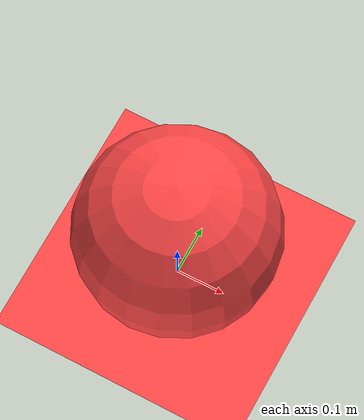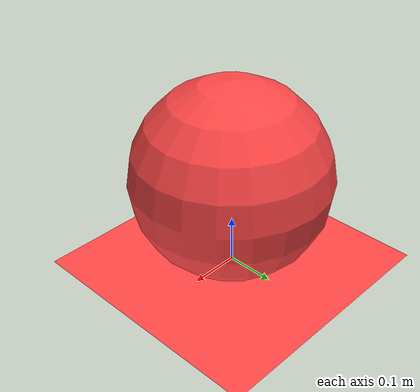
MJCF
<mujoco>
    <size njmax="3000" nconmax="1000"/>
    <option timestep="0.002"/>
    <default>
        <geom condim="6" density="1" rgba="1 0.2745 0.2745 1"/>
        <joint damping=".001"/>
        <motor ctrlrange="-1 1" ctrllimited="true" forcerange="-.05 .05" forcelimited="true"/>
        <velocity ctrlrange="-1 1" ctrllimited="true" forcerange="-.05 .05" forcelimited="true"/>
        <site size="0.032" type="sphere"/>
    </default>
    <asset>
        <texture name="texplane" builtin="flat" height="100" rgb1="0 0 0" rgb2="0 0 0" type="skybox" width="100"/>
        <material name="MatPlane" reflectance="0.5" shininess="1" specular="1" texture="texplane"/>
    </asset>
    <worldbody>
        <geom name="floor" size="5 5 0.1" type="plane" condim="6"/>
        <!-- z pose needs to be changed once we change the robot size, otherwise it is "stuck" on the ground -->
        <body name="robot" pos="0 0 .2">
            <camera name="vision" pos="0 0 .15" xyaxes="0 -1 0 .4 0 1" fovy="90"/>
            <joint type="slide" axis="1 0 0" name="x" damping="0.01"/>
            <joint type="slide" axis="0 1 0" name="y" damping="0.01"/>
            <joint type="hinge" axis="0 0 1" name="z" damping="0.005"/>
            <geom name="robot" type="sphere" size=".2" friction="1 0.01 0.01"/>

            <!-- Original config -->
            <site name="robot" rgba="1 0 0 .1"/>
        </body>
    </worldbody>
    <sensor>
        <!-- Used for observation -->
        <accelerometer site="robot" name="accelerometer"/>
        <velocimeter site="robot" name="velocimeter"/>
        <gyro site="robot" name="gyro"/>
        <magnetometer site="robot" name="magnetometer"/>

        <!-- Used for intrinsic constraints -->
        <subtreecom body="robot" name="subtreecom"/>
        <subtreelinvel body="robot" name="subtreelinvel"/>
        <subtreeangmom body="robot" name="subtreeangmom"/>
    </sensor>
    <actuator>
        <motor gear="0.3 0 0 0 0 0" site="robot" name="x"/>
        <motor gear="0.3 0 0 0 0 0" jointinparent="y" name="z"/>
    </actuator>
</mujoco>
